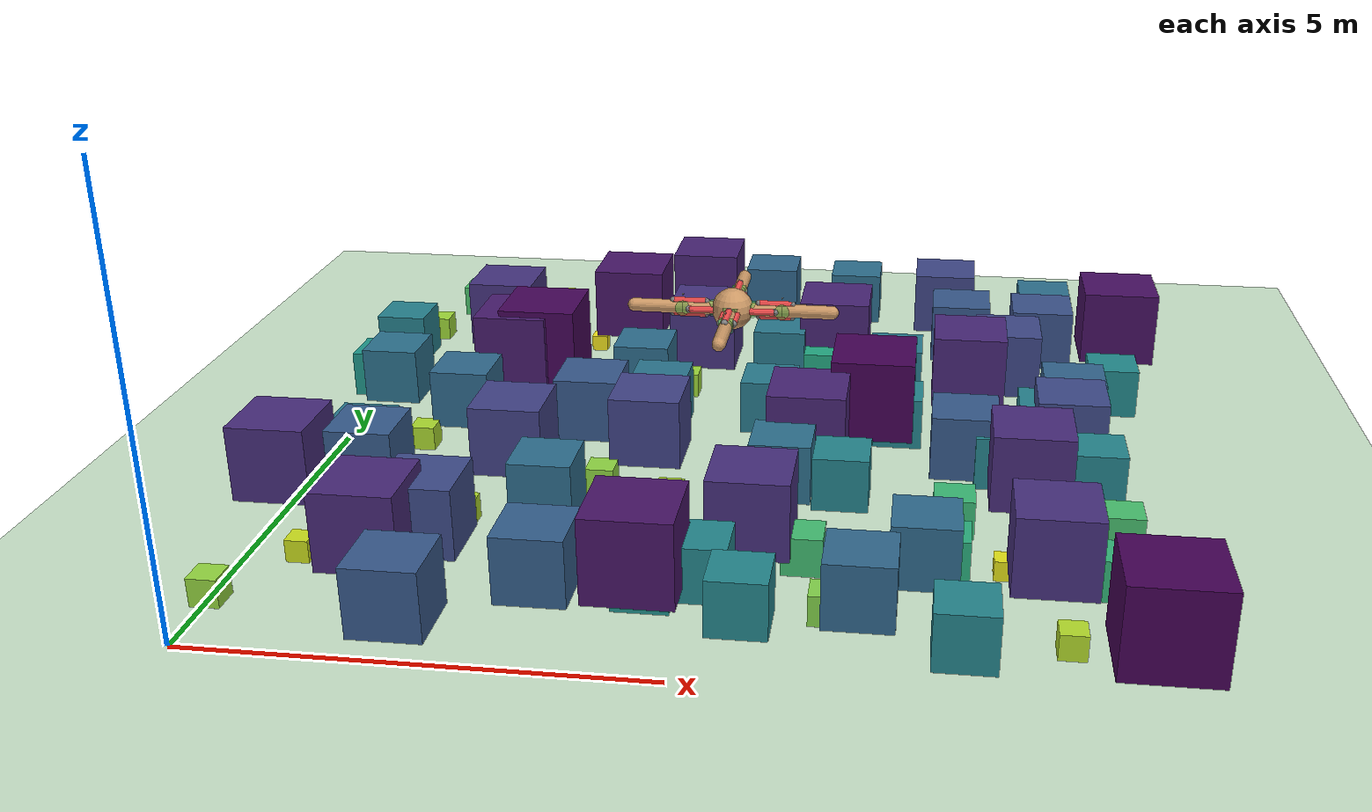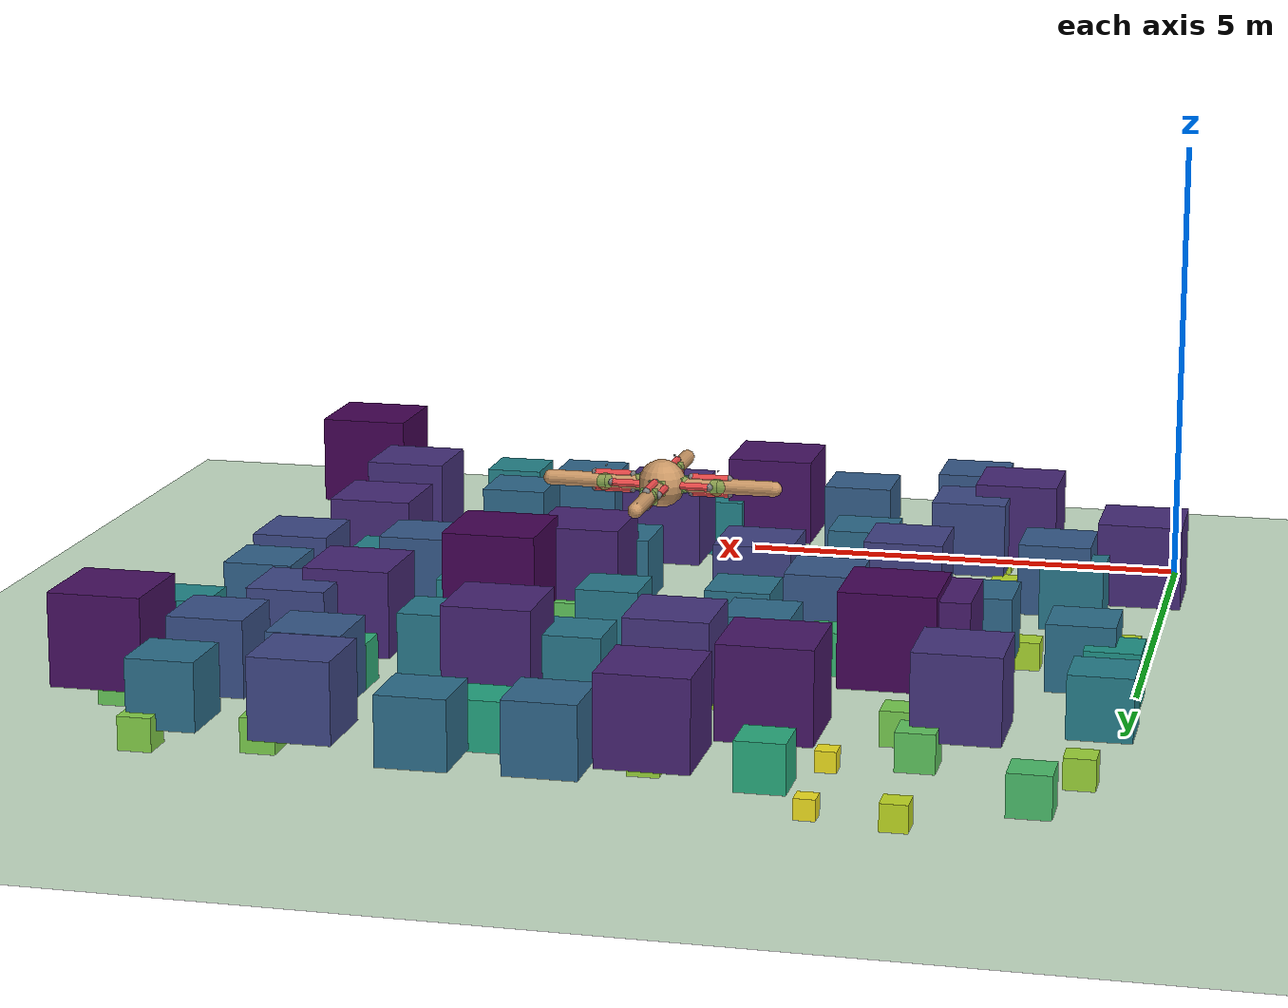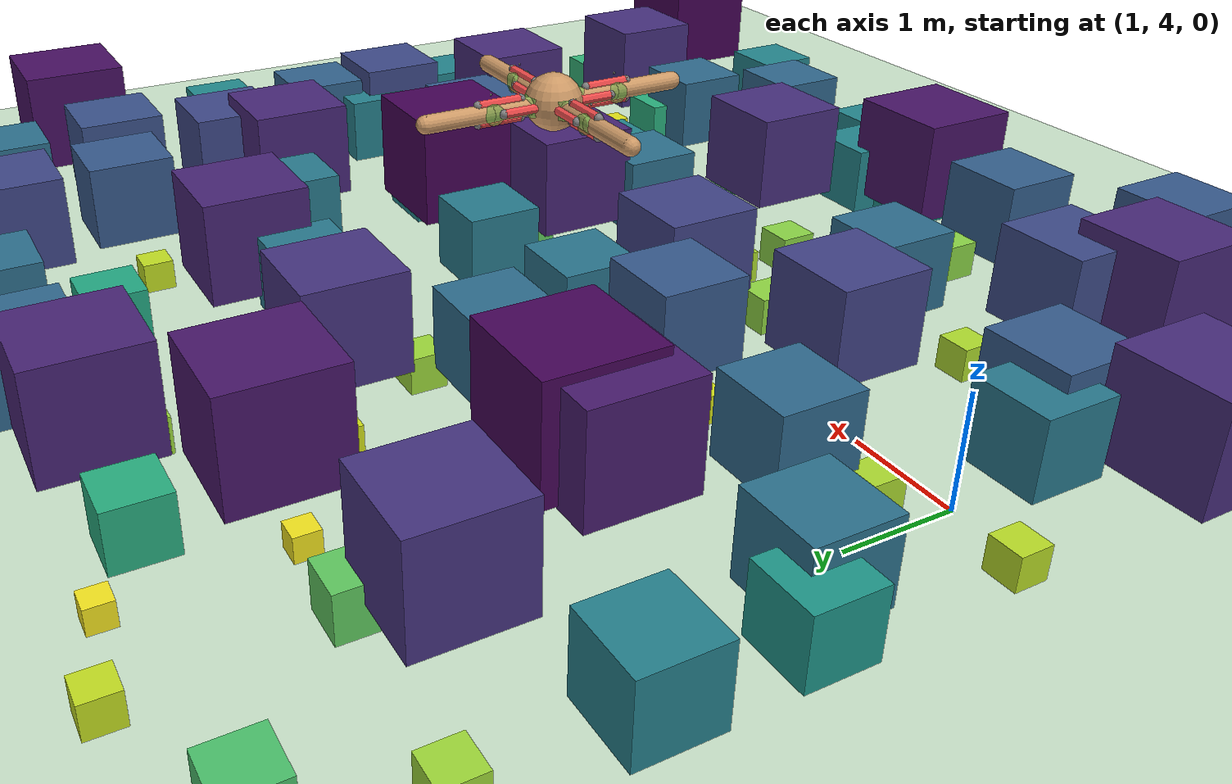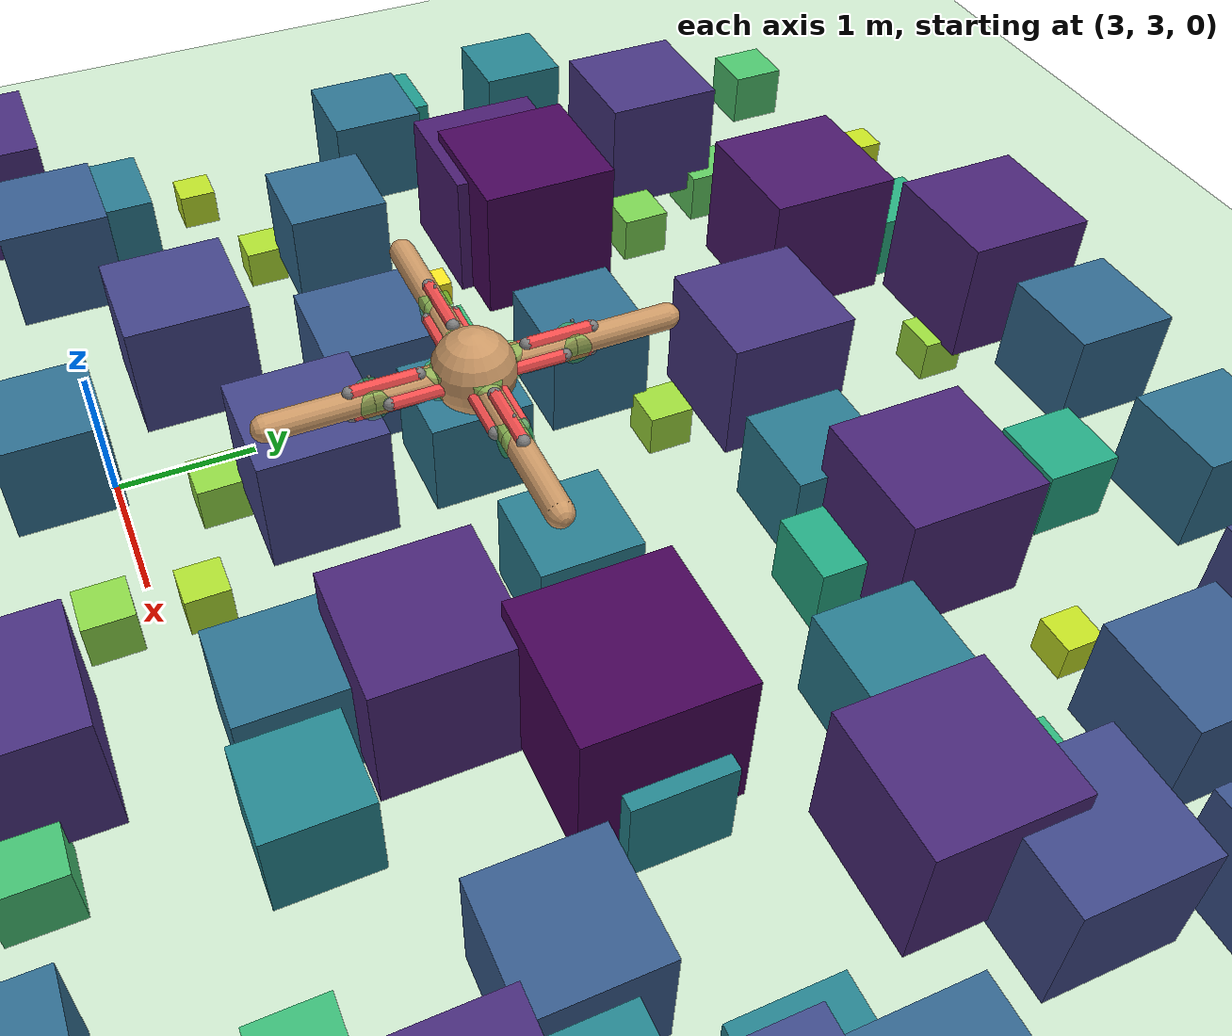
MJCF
<?xml version="1.0" encoding="utf-8"?>
<mujoco model="ant">
	<compiler angle="degree" coordinate="local" inertiafromgeom="true"/>
	<option integrator="RK4" timestep="0.01"/>
	<size nconmax="4000" njmax="4000"/>
	<custom>
		<numeric name="init_qpos" data="0.0 0.0 0.55 1.0 0.0 0.0 0.0 0.0 1.0 0.0 -1.0 0.0 -1.0 0.0 1.0"/>
	</custom>
	<default>
		<joint armature="1" damping="1" limited="true"/>
		<geom density="5.0" friction="1 0.5 0.5" margin="0.01" rgba="0.8 0.6 0.4 1"/>
	</default>
	<asset>
		<texture builtin="gradient" height="100" rgb1="1 1 1" rgb2="0 0 0" type="skybox" width="100"/>
		<texture builtin="flat" height="1278" mark="cross" markrgb="1 1 1" name="texgeom" random="0.01" rgb1="0.8 0.6 0.4" rgb2="0.8 0.6 0.4" type="cube" width="127"/>
		<texture builtin="checker" height="100" name="texplane" rgb1="0 0 0" rgb2="0.8 0.8 0.8" type="2d" width="100"/>
		<material name="MatPlane" reflectance="0.5" shininess="1" specular="1" texrepeat="60 60" texture="texplane"/>
		<material name="geom" texture="texgeom" texuniform="true"/>
	</asset>
	<worldbody>
		<light cutoff="100" diffuse="1 1 1" dir="0 0 -1.3" directional="true" exponent="1" pos="0 0 1.3" specular="0.1 0.1 0.1"/>
		<geom material="MatPlane" name="floor" pos="0 0 0" rgba="0.8 0.9 0.8 1" size="40 40 40" type="plane"/>
		<body pos="0.1673600753981247 0.6587558156703676 0.32699120412046845">
			<freejoint/>
			<geom rgba="0.585678 0.846661 0.249897 0.9841260994849415" size="0.16349560206023422 0.16349560206023422 0.16349560206023422" type="box"/>
		</body>
		<body pos="0.7225096441100464 1.6935581568033407 0.2624790495798182">
			<freejoint/>
			<geom rgba="0.804182 0.882046 0.114965 0.9921901188025227" size="0.1312395247899091 0.1312395247899091 0.1312395247899091" type="box"/>
		</body>
		<body pos="0.16356272687333417 2.7240509210518784 0.899037421693589">
			<freejoint/>
			<geom rgba="0.278826 0.17549 0.483397 0.9126203222883014" size="0.4495187108467945 0.4495187108467945 0.4495187108467945" type="box"/>
		</body>
		<body pos="0.8148142180950579 3.516493215136385 0.675059417301208">
			<freejoint/>
			<geom rgba="0.162142 0.474838 0.55814 0.940617572837349" size="0.337529708650604 0.337529708650604 0.337529708650604" type="box"/>
		</body>
		<body pos="0.1719494706963992 4.305463299171456 0.2843324610119381">
			<freejoint/>
			<geom rgba="0.730889 0.871916 0.156029 0.9894584423735078" size="0.14216623050596905 0.14216623050596905 0.14216623050596905" type="box"/>
		</body>
		<body pos="0.4744798855492641 5.766046345081931 0.7027604083018113">
			<freejoint/>
			<geom rgba="0.174274 0.445044 0.557792 0.9371549489622736" size="0.35138020415090565 0.35138020415090565 0.35138020415090565" type="box"/>
		</body>
		<body pos="0.13937710995693553 6.037236540892212 0.5750016727838638">
			<freejoint/>
			<geom rgba="0.121148 0.592739 0.544641 0.9531247909020171" size="0.2875008363919319 0.2875008363919319 0.2875008363919319" type="box"/>
		</body>
		<body pos="0.13336794372992777 7.192025291977185 0.6473519405376021">
			<freejoint/>
			<geom rgba="0.149039 0.508051 0.55725 0.9440810074327998" size="0.32367597026880107 0.32367597026880107 0.32367597026880107" type="box"/>
		</body>
		<body pos="0.2121361134256048 8.350985571288428 0.3141532933792271">
			<freejoint/>
			<geom rgba="0.626579 0.854645 0.223353 0.9857308383275967" size="0.15707664668961355 0.15707664668961355 0.15707664668961355" type="box"/>
		</body>
		<body pos="0.5558818737323313 9.345861155327693 0.42647617624000733">
			<freejoint/>
			<geom rgba="0.296479 0.761561 0.424223 0.9716904779699991" size="0.21323808812000367 0.21323808812000367 0.21323808812000367" type="box"/>
		</body>
		<body pos="1.9441649422448144 0.8659477218262104 0.292320599208884">
			<freejoint/>
			<geom rgba="0.699415 0.867117 0.175971 0.9884599250988895" size="0.146160299604442 0.146160299604442 0.146160299604442" type="box"/>
		</body>
		<body pos="1.6716103831074087 1.2952335489203497 0.9081751321886002">
			<freejoint/>
			<geom rgba="0.280868 0.160771 0.472899 0.911478108476425" size="0.4540875660943001 0.4540875660943001 0.4540875660943001" type="box"/>
		</body>
		<body pos="1.7220196824782377 2.186198343868981 0.2802126850313523">
			<freejoint/>
			<geom rgba="0.741388 0.873449 0.149561 0.989973414371081" size="0.14010634251567616 0.14010634251567616 0.14010634251567616" type="box"/>
		</body>
		<body pos="1.039584085186405 3.107095419330821 0.7712339022791539">
			<freejoint/>
			<geom rgba="0.212395 0.359683 0.55171 0.9285957622151058" size="0.38561695113957695 0.38561695113957695 0.38561695113957695" type="box"/>
		</body>
		<body pos="1.1776391143135374 4.613002469199678 0.2976663202779385">
			<freejoint/>
			<geom rgba="0.678489 0.863742 0.189503 0.9877917099652577" size="0.14883316013896924 0.14883316013896924 0.14883316013896924" type="box"/>
		</body>
		<body pos="1.6069477082199821 5.080557595788173 0.7265747774884266">
			<freejoint/>
			<geom rgba="0.187231 0.414746 0.556547 0.9341781528139467" size="0.3632873887442133 0.3632873887442133 0.3632873887442133" type="box"/>
		</body>
		<body pos="1.9540108738907174 6.324233544214184 0.9379920788292295">
			<freejoint/>
			<geom rgba="0.283091 0.110553 0.431554 0.9077509901463463" size="0.46899603941461476 0.46899603941461476 0.46899603941461476" type="box"/>
		</body>
		<body pos="1.4134398841193319 7.822464496295795 0.8794185861511656">
			<freejoint/>
			<geom rgba="0.273006 0.20452 0.501721 0.9150726767311043" size="0.4397092930755828 0.4397092930755828 0.4397092930755828" type="box"/>
		</body>
		<body pos="1.7629848671919222 8.272226665977742 0.3937886007148521">
			<freejoint/>
			<geom rgba="0.377779 0.791781 0.377939 0.9757764249106435" size="0.19689430035742606 0.19689430035742606 0.19689430035742606" type="box"/>
		</body>
		<body pos="1.7204166274612722 9.834491153097026 0.27022695359374443">
			<freejoint/>
			<geom rgba="0.772852 0.877868 0.131109 0.991221630800782" size="0.13511347679687222 0.13511347679687222 0.13511347679687222" type="box"/>
		</body>
		<body pos="2.3333530572968586 0.15217566187198672 0.7755928293138628">
			<freejoint/>
			<geom rgba="0.21621 0.351535 0.550627 0.9280508963357672" size="0.3877964146569314 0.3877964146569314 0.3877964146569314" type="box"/>
		</body>
		<body pos="2.154002037553001 1.7301733678546258 0.8183396698428167">
			<freejoint/>
			<geom rgba="0.241237 0.296485 0.539709 0.9227075412696479" size="0.40916983492140835 0.40916983492140835 0.40916983492140835" type="box"/>
		</body>
		<body pos="2.2441560617126903 2.6881510500243606 0.29496943321744357">
			<freejoint/>
			<geom rgba="0.688944 0.865448 0.182725 0.9881288208478196" size="0.14748471660872178 0.14748471660872178 0.14748471660872178" type="box"/>
		</body>
		<body pos="2.5748650231586967 3.7303781605347153 0.842836053349755">
			<freejoint/>
			<geom rgba="0.255645 0.260703 0.528312 0.9196454933312807" size="0.4214180266748775 0.4214180266748775 0.4214180266748775" type="box"/>
		</body>
		<body pos="2.7095329541333237 4.973834975736307 0.2510936049630451">
			<freejoint/>
			<geom rgba="0.83527 0.886029 0.102646 0.9936132993796194" size="0.12554680248152256 0.12554680248152256 0.12554680248152256" type="box"/>
		</body>
		<body pos="2.0159399222062513 5.766552675005505 0.21196571260462538">
			<freejoint/>
			<geom rgba="0.964894 0.902323 0.123941 0.9985042859244219" size="0.10598285630231269 0.10598285630231269 0.10598285630231269" type="box"/>
		</body>
		<body pos="2.2937227060402616 6.4351592543379095 0.9882849135255838">
			<freejoint/>
			<geom rgba="0.271305 0.019942 0.347269 0.901464385809302" size="0.4941424567627919 0.4941424567627919 0.4941424567627919" type="box"/>
		</body>
		<body pos="2.04769090717182 7.5134323928159255 0.3619349823294622">
			<freejoint/>
			<geom rgba="0.477504 0.821444 0.318195 0.9797581272088173" size="0.1809674911647311 0.1809674911647311 0.1809674911647311" type="box"/>
		</body>
		<body pos="2.6288362786020403 8.274260788952404 0.21440263671802412">
			<freejoint/>
			<geom rgba="0.9553 0.901065 0.118128 0.9981996704102469" size="0.10720131835901206 0.10720131835901206 0.10720131835901206" type="box"/>
		</body>
		<body pos="2.5755859090043236 9.646600024294997 0.20990260565487606">
			<freejoint/>
			<geom rgba="0.964894 0.902323 0.123941 0.9987621742931405" size="0.10495130282743803 0.10495130282743803 0.10495130282743803" type="box"/>
		</body>
		<body pos="3.5447495755123812 0.950443377246964 0.75877834869265">
			<freejoint/>
			<geom rgba="0.204903 0.375746 0.553533 0.9301527064134187" size="0.379389174346325 0.379389174346325 0.379389174346325" type="box"/>
		</body>
		<body pos="3.6282159406251933 1.5211665129977403 0.33915174790669356">
			<freejoint/>
			<geom rgba="0.545524 0.838039 0.275626 0.9826060315116633" size="0.16957587395334678 0.16957587395334678 0.16957587395334678" type="box"/>
		</body>
		<body pos="3.221080457172481 2.684519568975377 0.7151122426188747">
			<freejoint/>
			<geom rgba="0.180629 0.429975 0.557282 0.9356109696726407" size="0.35755612130943737 0.35755612130943737 0.35755612130943737" type="box"/>
		</body>
		<body pos="3.6332449925756656 3.6314846729961623 0.3314611217950148">
			<freejoint/>
			<geom rgba="0.565498 0.84243 0.262877 0.9835673597756232" size="0.1657305608975074 0.1657305608975074 0.1657305608975074" type="box"/>
		</body>
		<body pos="3.2614935033666703 4.862138249724701 0.7763950421520514">
			<freejoint/>
			<geom rgba="0.21621 0.351535 0.550627 0.9279506197309936" size="0.3881975210760257 0.3881975210760257 0.3881975210760257" type="box"/>
		</body>
		<body pos="3.080981473466277 5.455327564379968 0.4582479625317899">
			<freejoint/>
			<geom rgba="0.226397 0.728888 0.462789 0.9677190046835262" size="0.22912398126589495 0.22912398126589495 0.22912398126589495" type="box"/>
		</body>
		<body pos="3.675268697180229 6.269310731080317 0.7140279592754819">
			<freejoint/>
			<geom rgba="0.180629 0.429975 0.557282 0.9357465050905648" size="0.35701397963774095 0.35701397963774095 0.35701397963774095" type="box"/>
		</body>
		<body pos="3.5934481247487216 7.597859385075734 0.25373304525259477">
			<freejoint/>
			<geom rgba="0.82494 0.88472 0.106217 0.9932833693434256" size="0.12686652262629738 0.12686652262629738 0.12686652262629738" type="box"/>
		</body>
		<body pos="3.151899578854612 8.294417997238824 0.951037995100021">
			<freejoint/>
			<geom rgba="0.281924 0.089666 0.412415 0.9061202506124973" size="0.4755189975500105 0.4755189975500105 0.4755189975500105" type="box"/>
		</body>
		<body pos="3.0383519751656087 9.273255225112557 0.4973144643593185">
			<freejoint/>
			<geom rgba="0.157851 0.683765 0.501686 0.9628356919550852" size="0.24865723217965924 0.24865723217965924 0.24865723217965924" type="box"/>
		</body>
		<body pos="4.547193341654261 0.9808160156011277 0.9575676603730663">
			<freejoint/>
			<geom rgba="0.280894 0.078907 0.402329 0.9053040424533667" size="0.47878383018653314 0.47878383018653314 0.47878383018653314" type="box"/>
		</body>
		<body pos="4.623824073177547 1.0185704707879792 0.5993893536480224">
			<freejoint/>
			<geom rgba="0.127568 0.566949 0.550556 0.9500763307939972" size="0.2996946768240112 0.2996946768240112 0.2996946768240112" type="box"/>
		</body>
		<body pos="4.491912522651141 2.7199803654928747 0.33836538343266565">
			<freejoint/>
			<geom rgba="0.545524 0.838039 0.275626 0.9827043270709168" size="0.16918269171633282 0.16918269171633282 0.16918269171633282" type="box"/>
		</body>
		<body pos="4.493528986165881 3.3217476744806103 0.298892014644573">
			<freejoint/>
			<geom rgba="0.678489 0.863742 0.189503 0.9876384981694284" size="0.1494460073222865 0.1494460073222865 0.1494460073222865" type="box"/>
		</body>
		<body pos="4.116200322893831 4.1907588177904405 0.8394615561533965">
			<freejoint/>
			<geom rgba="0.253935 0.265254 0.529983 0.9200673054808255" size="0.41973077807669823 0.41973077807669823 0.41973077807669823" type="box"/>
		</body>
		<body pos="4.067902756267289 5.256305630834012 0.6905706674995309">
			<freejoint/>
			<geom rgba="0.168126 0.459988 0.558082 0.9386786665625586" size="0.34528533374976544 0.34528533374976544 0.34528533374976544" type="box"/>
		</body>
		<body pos="4.1692654315569015 6.684077188049941 0.31652848034705877">
			<freejoint/>
			<geom rgba="0.616293 0.852709 0.230052 0.9854339399566177" size="0.15826424017352939 0.15826424017352939 0.15826424017352939" type="box"/>
		</body>
		<body pos="4.337445573298571 7.299743433612951 0.8790196386350242">
			<freejoint/>
			<geom rgba="0.273006 0.20452 0.501721 0.915122545170622" size="0.4395098193175121 0.4395098193175121 0.4395098193175121" type="box"/>
		</body>
		<body pos="4.2542723049083335 8.883696791469923 0.3198106212714429">
			<freejoint/>
			<geom rgba="0.606045 0.850733 0.236712 0.9850236723410697" size="0.15990531063572144 0.15990531063572144 0.15990531063572144" type="box"/>
		</body>
		<body pos="4.094312667313321 9.306164609512583 0.9212197871726">
			<freejoint/>
			<geom rgba="0.282623 0.140926 0.457517 0.9098475266034249" size="0.4606098935863 0.4606098935863 0.4606098935863" type="box"/>
		</body>
		<body pos="5.64061484266733 0.6480731043933127 0.6311101664395651">
			<freejoint/>
			<geom rgba="0.140536 0.530132 0.555659 0.9461112291950544" size="0.31555508321978254 0.31555508321978254 0.31555508321978254" type="box"/>
		</body>
		<body pos="5.1656922709336275 1.2533741577465158 0.6285575716835968">
			<freejoint/>
			<geom rgba="0.140536 0.530132 0.555659 0.9464303035395504" size="0.3142787858417984 0.3142787858417984 0.3142787858417984" type="box"/>
		</body>
		<body pos="5.5859190362951265 2.0991079728835533 0.8923853755307534">
			<freejoint/>
			<geom rgba="0.277134 0.185228 0.489898 0.9134518280586559" size="0.4461926877653767 0.4461926877653767 0.4461926877653767" type="box"/>
		</body>
		<body pos="5.763123122210102 3.5288470449348424 0.7058856522379471">
			<freejoint/>
			<geom rgba="0.175841 0.44129 0.557685 0.9367642934702566" size="0.35294282611897354 0.35294282611897354 0.35294282611897354" type="box"/>
		</body>
		<body pos="5.997044414843 4.290444046684525 0.9175796385044761">
			<freejoint/>
			<geom rgba="0.28229 0.145912 0.46151 0.9103025451869404" size="0.45878981925223805 0.45878981925223805 0.45878981925223805" type="box"/>
		</body>
		<body pos="5.4215214957009845 5.414897325390084 0.6682678977615952">
			<freejoint/>
			<geom rgba="0.157729 0.485932 0.558013 0.9414665127798006" size="0.3341339488807976 0.3341339488807976 0.3341339488807976" type="box"/>
		</body>
		<body pos="5.987601001650514 6.955921769055223 0.5138125364548538">
			<freejoint/>
			<geom rgba="0.14021 0.665859 0.513427 0.9607734329431433" size="0.2569062682274269 0.2569062682274269 0.2569062682274269" type="box"/>
		</body>
		<body pos="5.3825242461448575 7.152700430146639 0.6772423994523372">
			<freejoint/>
			<geom rgba="0.162142 0.474838 0.55814 0.9403447000684578" size="0.3386211997261686 0.3386211997261686 0.3386211997261686" type="box"/>
		</body>
		<body pos="5.856533923149446 8.716997529961699 0.5185897693347302">
			<freejoint/>
			<geom rgba="0.137339 0.662252 0.515571 0.9601762788331587" size="0.2592948846673651 0.2592948846673651 0.2592948846673651" type="box"/>
		</body>
		<body pos="5.031115737600671 9.53188239025708 0.734174772025773">
			<freejoint/>
			<geom rgba="0.190631 0.407061 0.556089 0.9332281534967783" size="0.3670873860128865 0.3670873860128865 0.3670873860128865" type="box"/>
		</body>
		<body pos="6.8005429567811335 0.8943449509170363 0.7320821902112564">
			<freejoint/>
			<geom rgba="0.190631 0.407061 0.556089 0.9334897262235929" size="0.3660410951056282 0.3660410951056282 0.3660410951056282" type="box"/>
		</body>
		<body pos="6.456590136312098 1.0682316362923534 0.3478280624565828">
			<freejoint/>
			<geom rgba="0.515992 0.831158 0.294279 0.9815214921929272" size="0.1739140312282914 0.1739140312282914 0.1739140312282914" type="box"/>
		</body>
		<body pos="6.144962244457565 2.004407915315735 0.443468676690878">
			<freejoint/>
			<geom rgba="0.259857 0.745492 0.444467 0.9695664154136403" size="0.221734338345439 0.221734338345439 0.221734338345439" type="box"/>
		</body>
		<body pos="6.452585861285782 3.4384328674885434 0.6360045900629478">
			<freejoint/>
			<geom rgba="0.143343 0.522773 0.556295 0.9454994262421316" size="0.3180022950314739 0.3180022950314739 0.3180022950314739" type="box"/>
		</body>
		<body pos="6.056289465383829 4.666471020788271 0.3908491097563762">
			<freejoint/>
			<geom rgba="0.386433 0.794644 0.372886 0.9761438612804529" size="0.1954245548781881 0.1954245548781881 0.1954245548781881" type="box"/>
		</body>
		<body pos="6.720333939402269 5.154647632126569 0.9968353500345097">
			<freejoint/>
			<geom rgba="0.26851 0.009605 0.335427 0.9003955812456863" size="0.49841767501725487 0.49841767501725487 0.49841767501725487" type="box"/>
		</body>
		<body pos="6.955431869250466 6.694288413570293 0.6688798262365192">
			<freejoint/>
			<geom rgba="0.159194 0.482237 0.558073 0.9413900217204351" size="0.3344399131182596 0.3344399131182596 0.3344399131182596" type="box"/>
		</body>
		<body pos="6.102283750737056 7.465980225563477 0.9178488887483665">
			<freejoint/>
			<geom rgba="0.28229 0.145912 0.46151 0.9102688889064542" size="0.4589244443741832 0.4589244443741832 0.4589244443741832" type="box"/>
		</body>
		<body pos="6.938307904467171 8.087479232772386 0.2719208354922228">
			<freejoint/>
			<geom rgba="0.762373 0.876424 0.137064 0.9910098955634722" size="0.1359604177461114 0.1359604177461114 0.1359604177461114" type="box"/>
		</body>
		<body pos="6.270566967156889 9.536209818873495 0.7068866435803745">
			<freejoint/>
			<geom rgba="0.177423 0.437527 0.557565 0.9366391695524532" size="0.3534433217901872 0.3534433217901872 0.3534433217901872" type="box"/>
		</body>
		<body pos="7.82326873248717 0.3255896797543808 0.6337893764283975">
			<freejoint/>
			<geom rgba="0.141935 0.526453 0.555991 0.9457763279464503" size="0.31689468821419875 0.31689468821419875 0.31689468821419875" type="box"/>
		</body>
		<body pos="7.422376396044584 1.7560200039465796 0.7221708458920968">
			<freejoint/>
			<geom rgba="0.185556 0.41857 0.556753 0.9347286442634879" size="0.3610854229460484 0.3610854229460484 0.3610854229460484" type="box"/>
		</body>
		<body pos="7.644237332687369 2.0354183453179977 0.4910823486423719">
			<freejoint/>
			<geom rgba="0.166383 0.690856 0.496502 0.9636147064197035" size="0.24554117432118594 0.24554117432118594 0.24554117432118594" type="box"/>
		</body>
		<body pos="7.719776735596894 3.029177304968914 0.4575405700391369">
			<freejoint/>
			<geom rgba="0.226397 0.728888 0.462789 0.967807428745108" size="0.22877028501956845 0.22877028501956845 0.22877028501956845" type="box"/>
		</body>
		<body pos="7.825068909365258 4.328367074301391 0.7720084045059097">
			<freejoint/>
			<geom rgba="0.214298 0.355619 0.551184 0.9284989494367613" size="0.38600420225295484 0.38600420225295484 0.38600420225295484" type="box"/>
		</body>
		<body pos="7.008537555367667 5.215524450955599 0.6344000379221986">
			<freejoint/>
			<geom rgba="0.143343 0.522773 0.556295 0.9456999952597251" size="0.3172000189610993 0.3172000189610993 0.3172000189610993" type="box"/>
		</body>
		<body pos="7.889538291865996 6.391762753769575 0.9111681307956947">
			<freejoint/>
			<geom rgba="0.281412 0.155834 0.469201 0.9111039836505381" size="0.45558406539784735 0.45558406539784735 0.45558406539784735" type="box"/>
		</body>
		<body pos="7.791835523416368 7.076768088038252 0.47919632755312097">
			<freejoint/>
			<geom rgba="0.185783 0.704891 0.485273 0.9651004590558598" size="0.23959816377656049 0.23959816377656049 0.23959816377656049" type="box"/>
		</body>
		<body pos="7.793674916608467 8.082434206875842 0.7750542366148525">
			<freejoint/>
			<geom rgba="0.21621 0.351535 0.550627 0.9281182204231434" size="0.38752711830742625 0.38752711830742625 0.38752711830742625" type="box"/>
		</body>
		<body pos="7.56737751846049 9.155971977331383 0.828464460147561">
			<freejoint/>
			<geom rgba="0.248629 0.278775 0.534556 0.9214419424815549" size="0.4142322300737805 0.4142322300737805 0.4142322300737805" type="box"/>
		</body>
		<body pos="8.866781040919193 0.7741644155323331 0.28857019788639593">
			<freejoint/>
			<geom rgba="0.709898 0.868751 0.169257 0.9889287252642005" size="0.14428509894319796 0.14428509894319796 0.14428509894319796" type="box"/>
		</body>
		<body pos="8.717522052452413 1.6924637888117726 0.8890522400463199">
			<freejoint/>
			<geom rgba="0.276194 0.190074 0.493001 0.91386846999421" size="0.44452612002315994 0.44452612002315994 0.44452612002315994" type="box"/>
		</body>
		<body pos="8.265762266593114 2.2478963880047784 0.23375413293679115">
			<freejoint/>
			<geom rgba="0.89632 0.893616 0.096335 0.9957807333829011" size="0.11687706646839557 0.11687706646839557 0.11687706646839557" type="box"/>
		</body>
		<body pos="8.554994812670683 3.5255315252445234 0.9013401968296473">
			<freejoint/>
			<geom rgba="0.279574 0.170599 0.479997 0.912332475396294" size="0.45067009841482364 0.45067009841482364 0.45067009841482364" type="box"/>
		</body>
		<body pos="8.271067387829616 4.199311262155448 0.6384606385686433">
			<freejoint/>
			<geom rgba="0.144759 0.519093 0.556572 0.9451924201789196" size="0.31923031928432166 0.31923031928432166 0.31923031928432166" type="box"/>
		</body>
		<body pos="8.803123620985012 5.120079129425337 0.6474325609693312">
			<freejoint/>
			<geom rgba="0.149039 0.508051 0.55725 0.9440709298788336" size="0.3237162804846656 0.3237162804846656 0.3237162804846656" type="box"/>
		</body>
		<body pos="8.391188337179518 6.861650737953536 0.8271393112902519">
			<freejoint/>
			<geom rgba="0.246811 0.283237 0.535941 0.9216075860887185" size="0.41356965564512593 0.41356965564512593 0.41356965564512593" type="box"/>
		</body>
		<body pos="8.877977011518764 7.897403483760308 0.7992891036043128">
			<freejoint/>
			<geom rgba="0.229739 0.322361 0.545706 0.9250888620494608" size="0.3996445518021564 0.3996445518021564 0.3996445518021564" type="box"/>
		</body>
		<body pos="8.967573398957086 8.94489937640049 0.7055218797506104">
			<freejoint/>
			<geom rgba="0.175841 0.44129 0.557685 0.9368097650311737" size="0.3527609398753052 0.3527609398753052 0.3527609398753052" type="box"/>
		</body>
		<body pos="8.000236202240963 9.08375677782759 0.3549362634485193">
			<freejoint/>
			<geom rgba="0.496615 0.826376 0.306377 0.9806329670689351" size="0.17746813172425965 0.17746813172425965 0.17746813172425965" type="box"/>
		</body>
		<body pos="9.655787523245065 0.27623567887823663 0.9939352302316624">
			<freejoint/>
			<geom rgba="0.26851 0.009605 0.335427 0.9007580962210422" size="0.4969676151158312 0.4969676151158312 0.4969676151158312" type="box"/>
		</body>
		<body pos="9.324114837726556 1.866324211819949 0.4708786081722844">
			<freejoint/>
			<geom rgba="0.202219 0.715272 0.476084 0.9661401739784644" size="0.2354393040861422 0.2354393040861422 0.2354393040861422" type="box"/>
		</body>
		<body pos="9.538619300408094 2.9135664053769816 0.4334422258944952">
			<freejoint/>
			<geom rgba="0.281477 0.755203 0.432552 0.9708197217631881" size="0.2167211129472476 0.2167211129472476 0.2167211129472476" type="box"/>
		</body>
		<body pos="9.315740413109914 3.8849139008093476 0.6369763005010813">
			<freejoint/>
			<geom rgba="0.143343 0.522773 0.556295 0.9453779624373648" size="0.31848815025054067 0.31848815025054067 0.31848815025054067" type="box"/>
		</body>
		<body pos="9.069395535224011 4.767805346008424 0.8196818715006478">
			<freejoint/>
			<geom rgba="0.243113 0.292092 0.538516 0.922539766062419" size="0.4098409357503239 0.4098409357503239 0.4098409357503239" type="box"/>
		</body>
		<body pos="9.157923329139727 5.589264185061202 0.746324732267666">
			<freejoint/>
			<geom rgba="0.197636 0.391528 0.554969 0.9317094084665417" size="0.373162366133833 0.373162366133833 0.373162366133833" type="box"/>
		</body>
		<body pos="9.722663031256182 6.5254358086742315 0.6178728242202338">
			<freejoint/>
			<geom rgba="0.135066 0.544853 0.554029 0.9477658969724708" size="0.3089364121101169 0.3089364121101169 0.3089364121101169" type="box"/>
		</body>
		<body pos="9.881738554785843 7.981470368608762 0.38279977904899704">
			<freejoint/>
			<geom rgba="0.412913 0.803041 0.357269 0.9771500276188754" size="0.19139988952449852 0.19139988952449852 0.19139988952449852" type="box"/>
		</body>
		<body pos="9.910504676719773 8.115230774744566 0.9681317222179524">
			<freejoint/>
			<geom rgba="0.278791 0.062145 0.386592 0.9039835347227559" size="0.4840658611089762 0.4840658611089762 0.4840658611089762" type="box"/>
		</body>
		<body pos="9.184188911646817 9.268117258058485 0.34387690635185086">
			<freejoint/>
			<geom rgba="0.525776 0.833491 0.288127 0.9820153867060186" size="0.17193845317592543 0.17193845317592543 0.17193845317592543" type="box"/>
		</body>
		<body name="torso" pos="5 5 2">
			<camera mode="trackcom" name="track" pos="0 -3 0.3" xyaxes="1 0 0 0 0 1"/>
			<geom name="torso_geom" pos="0 0 0" size="0.25" type="sphere"/>
			<joint armature="0" damping="0" limited="false" margin="0.01" name="root" pos="0 0 0" type="free"/>
			<body name="front_right_leg" pos="0 0 0" euler="0 0 0.0">
				<geom fromto="0 0 0 0.2 0 0" name="hip_geom_front_right_leg" size="0.08" type="capsule"/>
				<site name="left_flex_hip_insertion_front_right_leg" pos="0.020000000000000004 0.08 0.0" size="0.04"/>
				<site name="right_flex_hip_insertion_front_right_leg" pos="0.020000000000000004 -0.08 0.0" size="0.04"/>
				<geom fromto="0.2 0.0 0.08 0.2 0.0 -0.08" name="hip_joint_geom_front_right_leg" rgba="0.3 0.9 0.3 0.4" size="0.08800000000000001" type="cylinder"/>
				<body name="thigh_body_front_right_leg" pos="0.2 0 0">
					<joint axis="0 0 1" name="hip_joint_front_right_leg" pos="0.0 0.0 0.0" range="-30 30" type="hinge"/>
					<geom fromto="0.0 0.0 0.0 0.4 0.0 0.0" name="thigh_geom_front_right_leg" size="0.08" type="capsule"/>
					<site name="left_flex_thigh_insertion_front_right_leg" pos="0.32000000000000006 0.08 0.0" size="0.04"/>
					<site name="right_flex_thigh_insertion_front_right_leg" pos="0.32000000000000006 -0.08 0.0" size="0.04"/>
					<site name="quad_u_insertion_front_right_leg" pos="0.12 0.0 0.08" size="0.04"/>
					<site name="hamstring_u_insertion_front_right_leg" pos="0.12 0.0 -0.08" size="0.04"/>
					<geom fromto="0.4 0.08 0.0 0.4 -0.08 0.0" name="knee_geom_front_right_leg" rgba="0.3 0.9 0.3 0.4" size="0.08800000000000001" type="cylinder"/>
					<site name="knee_top_side_front_right_leg" pos="0.4 0.0 0.16" size="0.01"/>
					<body name="shin_body_front_right_leg" pos="0.4 0.0 0">
						<joint axis="0 1 0" name="knee_joint_front_right_leg" pos="0.0 0.0 0.0" range="30 70" type="hinge"/>
						<geom fromto="0.0 0.0 0.0 0.6 0.0 0.0" name="shin_geom_front_right_leg" size="0.08" type="capsule"/>
						<site name="quad_l_insertion_front_right_leg" pos="0.12 0.0 0.08" size="0.04"/>
						<site name="hamstring_l_insertion_front_right_leg" pos="0.12 0.0 -0.08" size="0.04"/>
					</body>
				</body>
			</body>
			<body name="front_left_leg" pos="0 0 0" euler="0 0 90">
				<geom fromto="0 0 0 0.2 0 0" name="hip_geom_front_left_leg" size="0.08" type="capsule"/>
				<site name="left_flex_hip_insertion_front_left_leg" pos="0.020000000000000004 0.08 0.0" size="0.04"/>
				<site name="right_flex_hip_insertion_front_left_leg" pos="0.020000000000000004 -0.08 0.0" size="0.04"/>
				<geom fromto="0.2 0.0 0.08 0.2 0.0 -0.08" name="hip_joint_geom_front_left_leg" rgba="0.3 0.9 0.3 0.4" size="0.08800000000000001" type="cylinder"/>
				<body name="thigh_body_front_left_leg" pos="0.2 0 0">
					<joint axis="0 0 1" name="hip_joint_front_left_leg" pos="0.0 0.0 0.0" range="-30 30" type="hinge"/>
					<geom fromto="0.0 0.0 0.0 0.4 0.0 0.0" name="thigh_geom_front_left_leg" size="0.08" type="capsule"/>
					<site name="left_flex_thigh_insertion_front_left_leg" pos="0.32000000000000006 0.08 0.0" size="0.04"/>
					<site name="right_flex_thigh_insertion_front_left_leg" pos="0.32000000000000006 -0.08 0.0" size="0.04"/>
					<site name="quad_u_insertion_front_left_leg" pos="0.12 0.0 0.08" size="0.04"/>
					<site name="hamstring_u_insertion_front_left_leg" pos="0.12 0.0 -0.08" size="0.04"/>
					<geom fromto="0.4 0.08 0.0 0.4 -0.08 0.0" name="knee_geom_front_left_leg" rgba="0.3 0.9 0.3 0.4" size="0.08800000000000001" type="cylinder"/>
					<site name="knee_top_side_front_left_leg" pos="0.4 0.0 0.16" size="0.01"/>
					<body name="shin_body_front_left_leg" pos="0.4 0.0 0">
						<joint axis="0 1 0" name="knee_joint_front_left_leg" pos="0.0 0.0 0.0" range="30 70" type="hinge"/>
						<geom fromto="0.0 0.0 0.0 0.6 0.0 0.0" name="shin_geom_front_left_leg" size="0.08" type="capsule"/>
						<site name="quad_l_insertion_front_left_leg" pos="0.12 0.0 0.08" size="0.04"/>
						<site name="hamstring_l_insertion_front_left_leg" pos="0.12 0.0 -0.08" size="0.04"/>
					</body>
				</body>
			</body>
			<body name="back_left_leg" pos="0 0 0" euler="0 0 180">
				<geom fromto="0 0 0 0.2 0 0" name="hip_geom_back_left_leg" size="0.08" type="capsule"/>
				<site name="left_flex_hip_insertion_back_left_leg" pos="0.020000000000000004 0.08 0.0" size="0.04"/>
				<site name="right_flex_hip_insertion_back_left_leg" pos="0.020000000000000004 -0.08 0.0" size="0.04"/>
				<geom fromto="0.2 0.0 0.08 0.2 0.0 -0.08" name="hip_joint_geom_back_left_leg" rgba="0.3 0.9 0.3 0.4" size="0.08800000000000001" type="cylinder"/>
				<body name="thigh_body_back_left_leg" pos="0.2 0 0">
					<joint axis="0 0 1" name="hip_joint_back_left_leg" pos="0.0 0.0 0.0" range="-30 30" type="hinge"/>
					<geom fromto="0.0 0.0 0.0 0.4 0.0 0.0" name="thigh_geom_back_left_leg" size="0.08" type="capsule"/>
					<site name="left_flex_thigh_insertion_back_left_leg" pos="0.32000000000000006 0.08 0.0" size="0.04"/>
					<site name="right_flex_thigh_insertion_back_left_leg" pos="0.32000000000000006 -0.08 0.0" size="0.04"/>
					<site name="quad_u_insertion_back_left_leg" pos="0.12 0.0 0.08" size="0.04"/>
					<site name="hamstring_u_insertion_back_left_leg" pos="0.12 0.0 -0.08" size="0.04"/>
					<geom fromto="0.4 0.08 0.0 0.4 -0.08 0.0" name="knee_geom_back_left_leg" rgba="0.3 0.9 0.3 0.4" size="0.08800000000000001" type="cylinder"/>
					<site name="knee_top_side_back_left_leg" pos="0.4 0.0 0.16" size="0.01"/>
					<body name="shin_body_back_left_leg" pos="0.4 0.0 0">
						<joint axis="0 1 0" name="knee_joint_back_left_leg" pos="0.0 0.0 0.0" range="30 70" type="hinge"/>
						<geom fromto="0.0 0.0 0.0 0.6 0.0 0.0" name="shin_geom_back_left_leg" size="0.08" type="capsule"/>
						<site name="quad_l_insertion_back_left_leg" pos="0.12 0.0 0.08" size="0.04"/>
						<site name="hamstring_l_insertion_back_left_leg" pos="0.12 0.0 -0.08" size="0.04"/>
					</body>
				</body>
			</body>
			<body name="back_right_leg" pos="0 0 0" euler="0 0 270">
				<geom fromto="0 0 0 0.2 0 0" name="hip_geom_back_right_leg" size="0.08" type="capsule"/>
				<site name="left_flex_hip_insertion_back_right_leg" pos="0.020000000000000004 0.08 0.0" size="0.04"/>
				<site name="right_flex_hip_insertion_back_right_leg" pos="0.020000000000000004 -0.08 0.0" size="0.04"/>
				<geom fromto="0.2 0.0 0.08 0.2 0.0 -0.08" name="hip_joint_geom_back_right_leg" rgba="0.3 0.9 0.3 0.4" size="0.08800000000000001" type="cylinder"/>
				<body name="thigh_body_back_right_leg" pos="0.2 0 0">
					<joint axis="0 0 1" name="hip_joint_back_right_leg" pos="0.0 0.0 0.0" range="-30 30" type="hinge"/>
					<geom fromto="0.0 0.0 0.0 0.4 0.0 0.0" name="thigh_geom_back_right_leg" size="0.08" type="capsule"/>
					<site name="left_flex_thigh_insertion_back_right_leg" pos="0.32000000000000006 0.08 0.0" size="0.04"/>
					<site name="right_flex_thigh_insertion_back_right_leg" pos="0.32000000000000006 -0.08 0.0" size="0.04"/>
					<site name="quad_u_insertion_back_right_leg" pos="0.12 0.0 0.08" size="0.04"/>
					<site name="hamstring_u_insertion_back_right_leg" pos="0.12 0.0 -0.08" size="0.04"/>
					<geom fromto="0.4 0.08 0.0 0.4 -0.08 0.0" name="knee_geom_back_right_leg" rgba="0.3 0.9 0.3 0.4" size="0.08800000000000001" type="cylinder"/>
					<site name="knee_top_side_back_right_leg" pos="0.4 0.0 0.16" size="0.01"/>
					<body name="shin_body_back_right_leg" pos="0.4 0.0 0">
						<joint axis="0 1 0" name="knee_joint_back_right_leg" pos="0.0 0.0 0.0" range="30 70" type="hinge"/>
						<geom fromto="0.0 0.0 0.0 0.6 0.0 0.0" name="shin_geom_back_right_leg" size="0.08" type="capsule"/>
						<site name="quad_l_insertion_back_right_leg" pos="0.12 0.0 0.08" size="0.04"/>
						<site name="hamstring_l_insertion_back_right_leg" pos="0.12 0.0 -0.08" size="0.04"/>
					</body>
				</body>
			</body>
		</body>
	</worldbody>
	<tendon>
		<spatial name="left_hip_flex_front_right_leg" rgba="0.95 0.3 0.3 1" stiffness="1000" width="0.04">
			<site site="left_flex_hip_insertion_front_right_leg"/>
			<geom geom="hip_joint_geom_front_right_leg"/>
			<site site="left_flex_thigh_insertion_front_right_leg"/>
		</spatial>
		<spatial name="right_hip_flex_front_right_leg" rgba="0.95 0.3 0.3 1" stiffness="1000" width="0.04">
			<site site="right_flex_hip_insertion_front_right_leg"/>
			<geom geom="hip_joint_geom_front_right_leg"/>
			<site site="right_flex_thigh_insertion_front_right_leg"/>
		</spatial>
		<spatial name="quad_front_right_leg" rgba="0.95 0.3 0.3 1" stiffness="1000" width="0.04">
			<site site="quad_u_insertion_front_right_leg"/>
			<geom geom="knee_geom_front_right_leg" sidesite="knee_top_side_front_right_leg"/>
			<site site="quad_l_insertion_front_right_leg"/>
		</spatial>
		<spatial name="hamstring_front_right_leg" rgba="0.95 0.3 0.3 1" stiffness="1000" width="0.04">
			<site site="hamstring_u_insertion_front_right_leg"/>
			<geom geom="knee_geom_front_right_leg"/>
			<site site="hamstring_l_insertion_front_right_leg"/>
		</spatial>
		<spatial name="left_hip_flex_front_left_leg" rgba="0.95 0.3 0.3 1" stiffness="1000" width="0.04">
			<site site="left_flex_hip_insertion_front_left_leg"/>
			<geom geom="hip_joint_geom_front_left_leg"/>
			<site site="left_flex_thigh_insertion_front_left_leg"/>
		</spatial>
		<spatial name="right_hip_flex_front_left_leg" rgba="0.95 0.3 0.3 1" stiffness="1000" width="0.04">
			<site site="right_flex_hip_insertion_front_left_leg"/>
			<geom geom="hip_joint_geom_front_left_leg"/>
			<site site="right_flex_thigh_insertion_front_left_leg"/>
		</spatial>
		<spatial name="quad_front_left_leg" rgba="0.95 0.3 0.3 1" stiffness="1000" width="0.04">
			<site site="quad_u_insertion_front_left_leg"/>
			<geom geom="knee_geom_front_left_leg" sidesite="knee_top_side_front_left_leg"/>
			<site site="quad_l_insertion_front_left_leg"/>
		</spatial>
		<spatial name="hamstring_front_left_leg" rgba="0.95 0.3 0.3 1" stiffness="1000" width="0.04">
			<site site="hamstring_u_insertion_front_left_leg"/>
			<geom geom="knee_geom_front_left_leg"/>
			<site site="hamstring_l_insertion_front_left_leg"/>
		</spatial>
		<spatial name="left_hip_flex_back_left_leg" rgba="0.95 0.3 0.3 1" stiffness="1000" width="0.04">
			<site site="left_flex_hip_insertion_back_left_leg"/>
			<geom geom="hip_joint_geom_back_left_leg"/>
			<site site="left_flex_thigh_insertion_back_left_leg"/>
		</spatial>
		<spatial name="right_hip_flex_back_left_leg" rgba="0.95 0.3 0.3 1" stiffness="1000" width="0.04">
			<site site="right_flex_hip_insertion_back_left_leg"/>
			<geom geom="hip_joint_geom_back_left_leg"/>
			<site site="right_flex_thigh_insertion_back_left_leg"/>
		</spatial>
		<spatial name="quad_back_left_leg" rgba="0.95 0.3 0.3 1" stiffness="1000" width="0.04">
			<site site="quad_u_insertion_back_left_leg"/>
			<geom geom="knee_geom_back_left_leg" sidesite="knee_top_side_back_left_leg"/>
			<site site="quad_l_insertion_back_left_leg"/>
		</spatial>
		<spatial name="hamstring_back_left_leg" rgba="0.95 0.3 0.3 1" stiffness="1000" width="0.04">
			<site site="hamstring_u_insertion_back_left_leg"/>
			<geom geom="knee_geom_back_left_leg"/>
			<site site="hamstring_l_insertion_back_left_leg"/>
		</spatial>
		<spatial name="left_hip_flex_back_right_leg" rgba="0.95 0.3 0.3 1" stiffness="1000" width="0.04">
			<site site="left_flex_hip_insertion_back_right_leg"/>
			<geom geom="hip_joint_geom_back_right_leg"/>
			<site site="left_flex_thigh_insertion_back_right_leg"/>
		</spatial>
		<spatial name="right_hip_flex_back_right_leg" rgba="0.95 0.3 0.3 1" stiffness="1000" width="0.04">
			<site site="right_flex_hip_insertion_back_right_leg"/>
			<geom geom="hip_joint_geom_back_right_leg"/>
			<site site="right_flex_thigh_insertion_back_right_leg"/>
		</spatial>
		<spatial name="quad_back_right_leg" rgba="0.95 0.3 0.3 1" stiffness="1000" width="0.04">
			<site site="quad_u_insertion_back_right_leg"/>
			<geom geom="knee_geom_back_right_leg" sidesite="knee_top_side_back_right_leg"/>
			<site site="quad_l_insertion_back_right_leg"/>
		</spatial>
		<spatial name="hamstring_back_right_leg" rgba="0.95 0.3 0.3 1" stiffness="1000" width="0.04">
			<site site="hamstring_u_insertion_back_right_leg"/>
			<geom geom="knee_geom_back_right_leg"/>
			<site site="hamstring_l_insertion_back_right_leg"/>
		</spatial>
	</tendon>
	<actuator>
		<general ctrllimited="true" ctrlrange="-3.0 0.0" gainprm="200" name="quad_act_front_right_leg" tendon="quad_front_right_leg"/>
		<general ctrllimited="true" ctrlrange="-3.0 0.0" gainprm="200" name="hamstring_act_front_right_leg" tendon="hamstring_front_right_leg"/>
		<general ctrllimited="true" ctrlrange="-3.0 0.0" gainprm="200" name="right_hip_flex_act_front_right_leg" tendon="right_hip_flex_front_right_leg"/>
		<general ctrllimited="true" ctrlrange="-3.0 0.0" gainprm="200" name="left_hip_flex_act_front_right_leg" tendon="left_hip_flex_front_right_leg"/>
		<general ctrllimited="true" ctrlrange="-3.0 0.0" gainprm="200" name="quad_act_front_left_leg" tendon="quad_front_left_leg"/>
		<general ctrllimited="true" ctrlrange="-3.0 0.0" gainprm="200" name="hamstring_act_front_left_leg" tendon="hamstring_front_left_leg"/>
		<general ctrllimited="true" ctrlrange="-3.0 0.0" gainprm="200" name="right_hip_flex_act_front_left_leg" tendon="right_hip_flex_front_left_leg"/>
		<general ctrllimited="true" ctrlrange="-3.0 0.0" gainprm="200" name="left_hip_flex_act_front_left_leg" tendon="left_hip_flex_front_left_leg"/>
		<general ctrllimited="true" ctrlrange="-3.0 0.0" gainprm="200" name="quad_act_back_left_leg" tendon="quad_back_left_leg"/>
		<general ctrllimited="true" ctrlrange="-3.0 0.0" gainprm="200" name="hamstring_act_back_left_leg" tendon="hamstring_back_left_leg"/>
		<general ctrllimited="true" ctrlrange="-3.0 0.0" gainprm="200" name="right_hip_flex_act_back_left_leg" tendon="right_hip_flex_back_left_leg"/>
		<general ctrllimited="true" ctrlrange="-3.0 0.0" gainprm="200" name="left_hip_flex_act_back_left_leg" tendon="left_hip_flex_back_left_leg"/>
		<general ctrllimited="true" ctrlrange="-3.0 0.0" gainprm="200" name="quad_act_back_right_leg" tendon="quad_back_right_leg"/>
		<general ctrllimited="true" ctrlrange="-3.0 0.0" gainprm="200" name="hamstring_act_back_right_leg" tendon="hamstring_back_right_leg"/>
		<general ctrllimited="true" ctrlrange="-3.0 0.0" gainprm="200" name="right_hip_flex_act_back_right_leg" tendon="right_hip_flex_back_right_leg"/>
		<general ctrllimited="true" ctrlrange="-3.0 0.0" gainprm="200" name="left_hip_flex_act_back_right_leg" tendon="left_hip_flex_back_right_leg"/>
	</actuator>
</mujoco>
